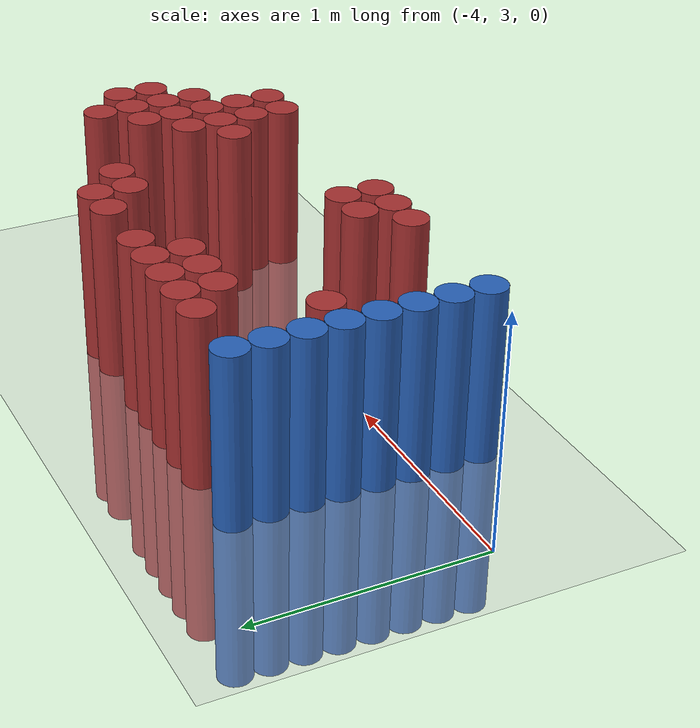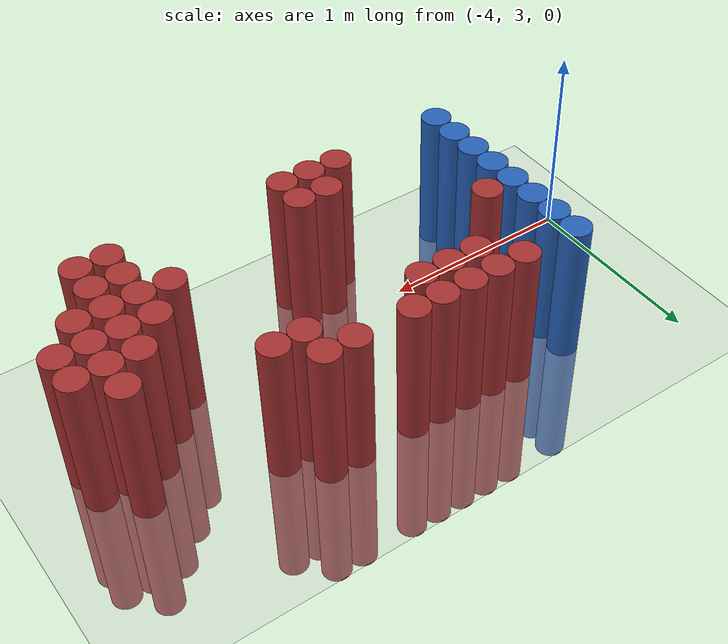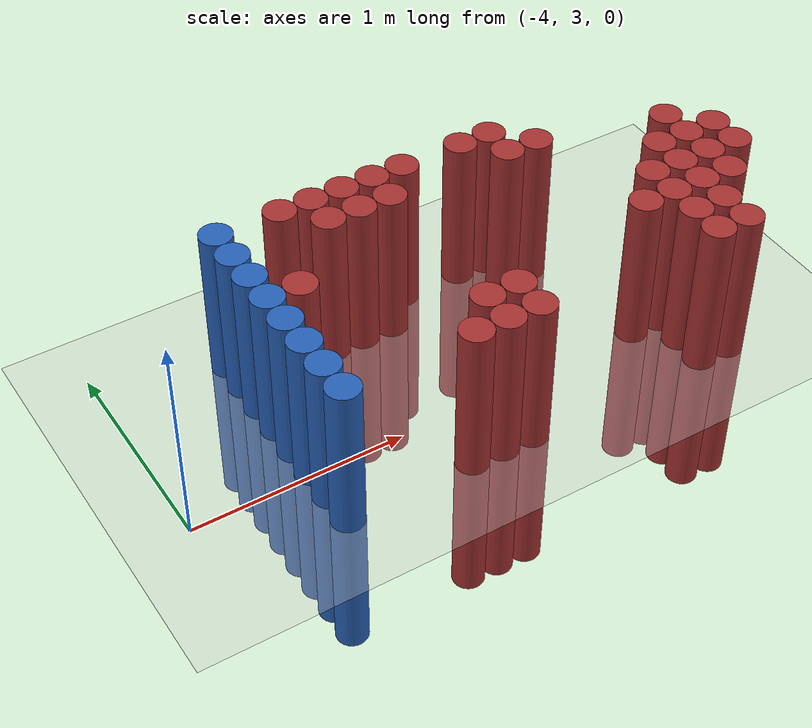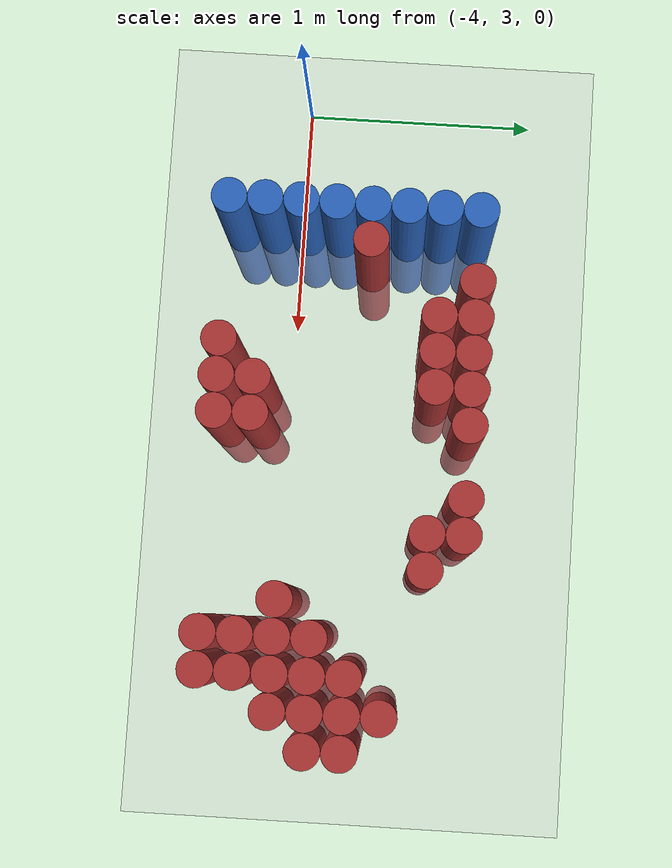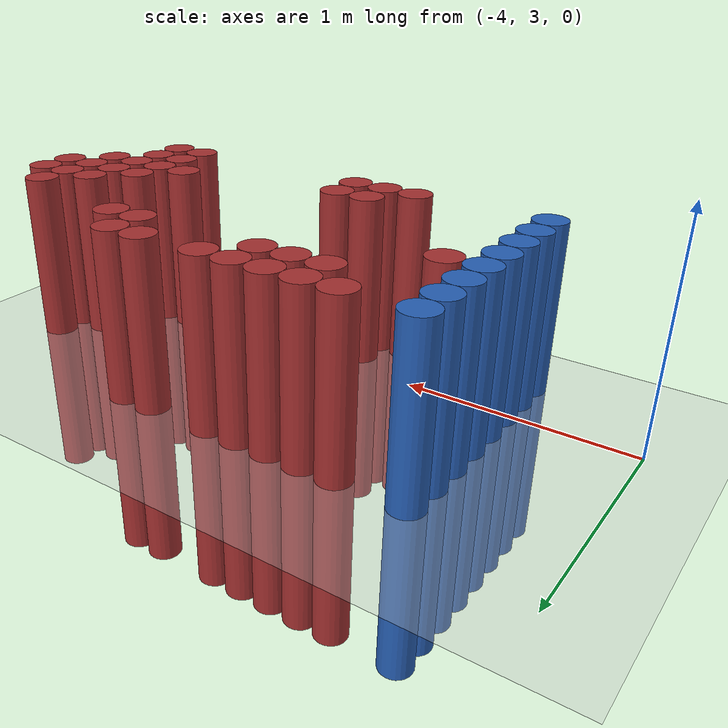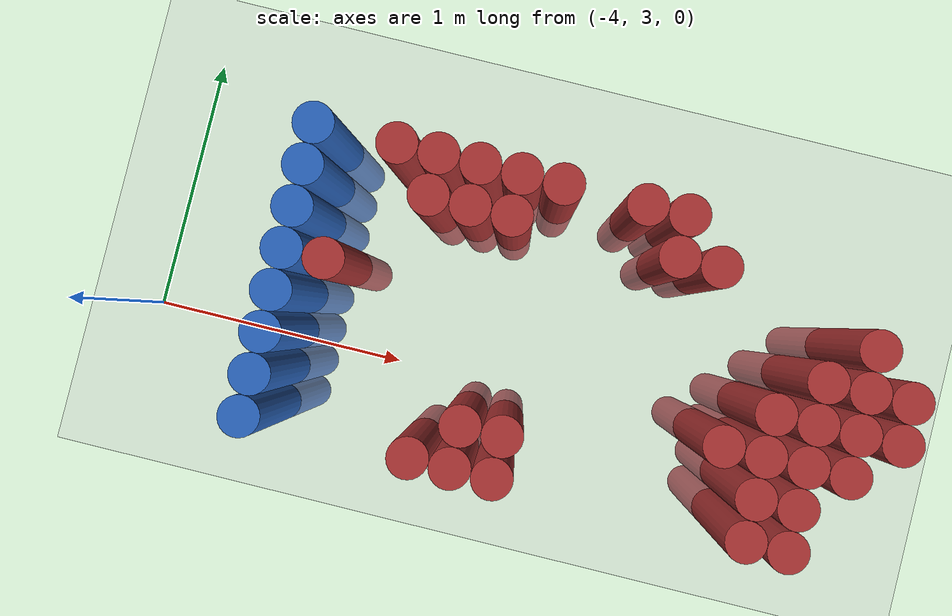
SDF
<sdf version="1.6">
 <world name="default">
  <model name="ground_plane">
   <static>1</static>
   <link name="link">
    <collision name="collision">
     <geometry><plane><normal>0 0 1</normal><size>100 100</size></plane></geometry>
     <surface><friction><ode><mu>100</mu><mu2>50</mu2></ode></friction></surface>
    </collision>
    <visual name="visual">
     <cast_shadows>0</cast_shadows>
     <geometry><plane><normal>0 0 1</normal><size>100 100</size></plane></geometry>
     <material>
      <script><uri>file://media/materials/scripts/gazebo.material</uri><name>Gazebo/Grey</name></script>
     </material>
    </visual>
   </link>
  </model>
  <model name="unit_cylinder_151">
   <static>1</static>
   <pose>-3.425000 2.725000 0.000000 0.000000 0.000000 0.000000</pose>
   <link name="link">
    <inertial>
     <mass>1</mass>
     <inertia><ixx>0.145833</ixx><ixy>0</ixy><ixz>0</ixz><iyy>0.145833</iyy><iyz>0</iyz><izz>0.125</izz></inertia>
    </inertial>
    <collision name="collision">
     <geometry><cylinder><radius>0.075000</radius><length>1.5</length></cylinder></geometry>
    </collision>
    <visual name="visual">
     <geometry><cylinder><radius>0.075000</radius><length>1.5</length></cylinder></geometry>
     <material>
      <ambient>0.152000 0.379000 0.720000 1</ambient>
      <diffuse>0.152000 0.379000 0.720000 1</diffuse>
     </material>
     <material>
      <script><name>Gazebo/Grey</name><uri>file://media/materials/scripts/gazebo.material</uri></script>
     </material>
    </visual>
   </link>
  </model>
  <model name="unit_cylinder_153">
   <static>1</static>
   <pose>-3.425000 2.875000 0.000000 0.000000 0.000000 0.000000</pose>
   <link name="link">
    <inertial>
     <mass>1</mass>
     <inertia><ixx>0.145833</ixx><ixy>0</ixy><ixz>0</ixz><iyy>0.145833</iyy><iyz>0</iyz><izz>0.125</izz></inertia>
    </inertial>
    <collision name="collision">
     <geometry><cylinder><radius>0.075000</radius><length>1.5</length></cylinder></geometry>
    </collision>
    <visual name="visual">
     <geometry><cylinder><radius>0.075000</radius><length>1.5</length></cylinder></geometry>
     <material>
      <ambient>0.152000 0.379000 0.720000 1</ambient>
      <diffuse>0.152000 0.379000 0.720000 1</diffuse>
     </material>
     <material>
      <script><name>Gazebo/Grey</name><uri>file://media/materials/scripts/gazebo.material</uri></script>
     </material>
    </visual>
   </link>
  </model>
  <model name="unit_cylinder_155">
   <static>1</static>
   <pose>-3.425000 3.025000 0.000000 0.000000 0.000000 0.000000</pose>
   <link name="link">
    <inertial>
     <mass>1</mass>
     <inertia><ixx>0.145833</ixx><ixy>0</ixy><ixz>0</ixz><iyy>0.145833</iyy><iyz>0</iyz><izz>0.125</izz></inertia>
    </inertial>
    <collision name="collision">
     <geometry><cylinder><radius>0.075000</radius><length>1.5</length></cylinder></geometry>
    </collision>
    <visual name="visual">
     <geometry><cylinder><radius>0.075000</radius><length>1.5</length></cylinder></geometry>
     <material>
      <ambient>0.152000 0.379000 0.720000 1</ambient>
      <diffuse>0.152000 0.379000 0.720000 1</diffuse>
     </material>
     <material>
      <script><name>Gazebo/Grey</name><uri>file://media/materials/scripts/gazebo.material</uri></script>
     </material>
    </visual>
   </link>
  </model>
  <model name="unit_cylinder_157">
   <static>1</static>
   <pose>-3.425000 3.175000 0.000000 0.000000 0.000000 0.000000</pose>
   <link name="link">
    <inertial>
     <mass>1</mass>
     <inertia><ixx>0.145833</ixx><ixy>0</ixy><ixz>0</ixz><iyy>0.145833</iyy><iyz>0</iyz><izz>0.125</izz></inertia>
    </inertial>
    <collision name="collision">
     <geometry><cylinder><radius>0.075000</radius><length>1.5</length></cylinder></geometry>
    </collision>
    <visual name="visual">
     <geometry><cylinder><radius>0.075000</radius><length>1.5</length></cylinder></geometry>
     <material>
      <ambient>0.152000 0.379000 0.720000 1</ambient>
      <diffuse>0.152000 0.379000 0.720000 1</diffuse>
     </material>
     <material>
      <script><name>Gazebo/Grey</name><uri>file://media/materials/scripts/gazebo.material</uri></script>
     </material>
    </visual>
   </link>
  </model>
  <model name="unit_cylinder_159">
   <static>1</static>
   <pose>-3.425000 3.325000 0.000000 0.000000 0.000000 0.000000</pose>
   <link name="link">
    <inertial>
     <mass>1</mass>
     <inertia><ixx>0.145833</ixx><ixy>0</ixy><ixz>0</ixz><iyy>0.145833</iyy><iyz>0</iyz><izz>0.125</izz></inertia>
    </inertial>
    <collision name="collision">
     <geometry><cylinder><radius>0.075000</radius><length>1.5</length></cylinder></geometry>
    </collision>
    <visual name="visual">
     <geometry><cylinder><radius>0.075000</radius><length>1.5</length></cylinder></geometry>
     <material>
      <ambient>0.152000 0.379000 0.720000 1</ambient>
      <diffuse>0.152000 0.379000 0.720000 1</diffuse>
     </material>
     <material>
      <script><name>Gazebo/Grey</name><uri>file://media/materials/scripts/gazebo.material</uri></script>
     </material>
    </visual>
   </link>
  </model>
  <model name="unit_cylinder_161">
   <static>1</static>
   <pose>-3.425000 3.475000 0.000000 0.000000 0.000000 0.000000</pose>
   <link name="link">
    <inertial>
     <mass>1</mass>
     <inertia><ixx>0.145833</ixx><ixy>0</ixy><ixz>0</ixz><iyy>0.145833</iyy><iyz>0</iyz><izz>0.125</izz></inertia>
    </inertial>
    <collision name="collision">
     <geometry><cylinder><radius>0.075000</radius><length>1.5</length></cylinder></geometry>
    </collision>
    <visual name="visual">
     <geometry><cylinder><radius>0.075000</radius><length>1.5</length></cylinder></geometry>
     <material>
      <ambient>0.152000 0.379000 0.720000 1</ambient>
      <diffuse>0.152000 0.379000 0.720000 1</diffuse>
     </material>
     <material>
      <script><name>Gazebo/Grey</name><uri>file://media/materials/scripts/gazebo.material</uri></script>
     </material>
    </visual>
   </link>
  </model>
  <model name="unit_cylinder_163">
   <static>1</static>
   <pose>-3.425000 3.625000 0.000000 0.000000 0.000000 0.000000</pose>
   <link name="link">
    <inertial>
     <mass>1</mass>
     <inertia><ixx>0.145833</ixx><ixy>0</ixy><ixz>0</ixz><iyy>0.145833</iyy><iyz>0</iyz><izz>0.125</izz></inertia>
    </inertial>
    <collision name="collision">
     <geometry><cylinder><radius>0.075000</radius><length>1.5</length></cylinder></geometry>
    </collision>
    <visual name="visual">
     <geometry><cylinder><radius>0.075000</radius><length>1.5</length></cylinder></geometry>
     <material>
      <ambient>0.152000 0.379000 0.720000 1</ambient>
      <diffuse>0.152000 0.379000 0.720000 1</diffuse>
     </material>
     <material>
      <script><name>Gazebo/Grey</name><uri>file://media/materials/scripts/gazebo.material</uri></script>
     </material>
    </visual>
   </link>
  </model>
  <model name="unit_cylinder_165">
   <static>1</static>
   <pose>-3.425000 3.775000 0.000000 0.000000 0.000000 0.000000</pose>
   <link name="link">
    <inertial>
     <mass>1</mass>
     <inertia><ixx>0.145833</ixx><ixy>0</ixy><ixz>0</ixz><iyy>0.145833</iyy><iyz>0</iyz><izz>0.125</izz></inertia>
    </inertial>
    <collision name="collision">
     <geometry><cylinder><radius>0.075000</radius><length>1.5</length></cylinder></geometry>
    </collision>
    <visual name="visual">
     <geometry><cylinder><radius>0.075000</radius><length>1.5</length></cylinder></geometry>
     <material>
      <ambient>0.152000 0.379000 0.720000 1</ambient>
      <diffuse>0.152000 0.379000 0.720000 1</diffuse>
     </material>
     <material>
      <script><name>Gazebo/Grey</name><uri>file://media/materials/scripts/gazebo.material</uri></script>
     </material>
    </visual>
   </link>
  </model>
  <model name="unit_cylinder_239">
   <static>1</static>
   <pose>-3.425000 2.725000 0.000000 0.000000 0.000000 0.000000</pose>
   <link name="link">
    <inertial>
     <mass>1</mass>
     <inertia><ixx>0.145833</ixx><ixy>0</ixy><ixz>0</ixz><iyy>0.145833</iyy><iyz>0</iyz><izz>0.125</izz></inertia>
    </inertial>
    <collision name="collision">
     <geometry><cylinder><radius>0.075000</radius><length>1.5</length></cylinder></geometry>
    </collision>
    <visual name="visual">
     <geometry><cylinder><radius>0.075000</radius><length>1.5</length></cylinder></geometry>
     <material>
      <ambient>0.152000 0.379000 0.720000 1</ambient>
      <diffuse>0.152000 0.379000 0.720000 1</diffuse>
     </material>
     <material>
      <script><name>Gazebo/Grey</name><uri>file://media/materials/scripts/gazebo.material</uri></script>
     </material>
    </visual>
   </link>
  </model>
  <model name="unit_cylinder_240">
   <static>1</static>
   <pose>-3.425000 2.875000 0.000000 0.000000 0.000000 0.000000</pose>
   <link name="link">
    <inertial>
     <mass>1</mass>
     <inertia><ixx>0.145833</ixx><ixy>0</ixy><ixz>0</ixz><iyy>0.145833</iyy><iyz>0</iyz><izz>0.125</izz></inertia>
    </inertial>
    <collision name="collision">
     <geometry><cylinder><radius>0.075000</radius><length>1.5</length></cylinder></geometry>
    </collision>
    <visual name="visual">
     <geometry><cylinder><radius>0.075000</radius><length>1.5</length></cylinder></geometry>
     <material>
      <ambient>0.152000 0.379000 0.720000 1</ambient>
      <diffuse>0.152000 0.379000 0.720000 1</diffuse>
     </material>
     <material>
      <script><name>Gazebo/Grey</name><uri>file://media/materials/scripts/gazebo.material</uri></script>
     </material>
    </visual>
   </link>
  </model>
  <model name="unit_cylinder_241">
   <static>1</static>
   <pose>-3.425000 3.025000 0.000000 0.000000 0.000000 0.000000</pose>
   <link name="link">
    <inertial>
     <mass>1</mass>
     <inertia><ixx>0.145833</ixx><ixy>0</ixy><ixz>0</ixz><iyy>0.145833</iyy><iyz>0</iyz><izz>0.125</izz></inertia>
    </inertial>
    <collision name="collision">
     <geometry><cylinder><radius>0.075000</radius><length>1.5</length></cylinder></geometry>
    </collision>
    <visual name="visual">
     <geometry><cylinder><radius>0.075000</radius><length>1.5</length></cylinder></geometry>
     <material>
      <ambient>0.152000 0.379000 0.720000 1</ambient>
      <diffuse>0.152000 0.379000 0.720000 1</diffuse>
     </material>
     <material>
      <script><name>Gazebo/Grey</name><uri>file://media/materials/scripts/gazebo.material</uri></script>
     </material>
    </visual>
   </link>
  </model>
  <model name="unit_cylinder_242">
   <static>1</static>
   <pose>-3.425000 3.175000 0.000000 0.000000 0.000000 0.000000</pose>
   <link name="link">
    <inertial>
     <mass>1</mass>
     <inertia><ixx>0.145833</ixx><ixy>0</ixy><ixz>0</ixz><iyy>0.145833</iyy><iyz>0</iyz><izz>0.125</izz></inertia>
    </inertial>
    <collision name="collision">
     <geometry><cylinder><radius>0.075000</radius><length>1.5</length></cylinder></geometry>
    </collision>
    <visual name="visual">
     <geometry><cylinder><radius>0.075000</radius><length>1.5</length></cylinder></geometry>
     <material>
      <ambient>0.152000 0.379000 0.720000 1</ambient>
      <diffuse>0.152000 0.379000 0.720000 1</diffuse>
     </material>
     <material>
      <script><name>Gazebo/Grey</name><uri>file://media/materials/scripts/gazebo.material</uri></script>
     </material>
    </visual>
   </link>
  </model>
  <model name="unit_cylinder_243">
   <static>1</static>
   <pose>-3.425000 3.325000 0.000000 0.000000 0.000000 0.000000</pose>
   <link name="link">
    <inertial>
     <mass>1</mass>
     <inertia><ixx>0.145833</ixx><ixy>0</ixy><ixz>0</ixz><iyy>0.145833</iyy><iyz>0</iyz><izz>0.125</izz></inertia>
    </inertial>
    <collision name="collision">
     <geometry><cylinder><radius>0.075000</radius><length>1.5</length></cylinder></geometry>
    </collision>
    <visual name="visual">
     <geometry><cylinder><radius>0.075000</radius><length>1.5</length></cylinder></geometry>
     <material>
      <ambient>0.152000 0.379000 0.720000 1</ambient>
      <diffuse>0.152000 0.379000 0.720000 1</diffuse>
     </material>
     <material>
      <script><name>Gazebo/Grey</name><uri>file://media/materials/scripts/gazebo.material</uri></script>
     </material>
    </visual>
   </link>
  </model>
  <model name="unit_cylinder_244">
   <static>1</static>
   <pose>-3.425000 3.475000 0.000000 0.000000 0.000000 0.000000</pose>
   <link name="link">
    <inertial>
     <mass>1</mass>
     <inertia><ixx>0.145833</ixx><ixy>0</ixy><ixz>0</ixz><iyy>0.145833</iyy><iyz>0</iyz><izz>0.125</izz></inertia>
    </inertial>
    <collision name="collision">
     <geometry><cylinder><radius>0.075000</radius><length>1.5</length></cylinder></geometry>
    </collision>
    <visual name="visual">
     <geometry><cylinder><radius>0.075000</radius><length>1.5</length></cylinder></geometry>
     <material>
      <ambient>0.152000 0.379000 0.720000 1</ambient>
      <diffuse>0.152000 0.379000 0.720000 1</diffuse>
     </material>
     <material>
      <script><name>Gazebo/Grey</name><uri>file://media/materials/scripts/gazebo.material</uri></script>
     </material>
    </visual>
   </link>
  </model>
  <model name="unit_cylinder_245">
   <static>1</static>
   <pose>-3.425000 3.625000 0.000000 0.000000 0.000000 0.000000</pose>
   <link name="link">
    <inertial>
     <mass>1</mass>
     <inertia><ixx>0.145833</ixx><ixy>0</ixy><ixz>0</ixz><iyy>0.145833</iyy><iyz>0</iyz><izz>0.125</izz></inertia>
    </inertial>
    <collision name="collision">
     <geometry><cylinder><radius>0.075000</radius><length>1.5</length></cylinder></geometry>
    </collision>
    <visual name="visual">
     <geometry><cylinder><radius>0.075000</radius><length>1.5</length></cylinder></geometry>
     <material>
      <ambient>0.152000 0.379000 0.720000 1</ambient>
      <diffuse>0.152000 0.379000 0.720000 1</diffuse>
     </material>
     <material>
      <script><name>Gazebo/Grey</name><uri>file://media/materials/scripts/gazebo.material</uri></script>
     </material>
    </visual>
   </link>
  </model>
  <model name="unit_cylinder_246">
   <static>1</static>
   <pose>-3.425000 3.775000 0.000000 0.000000 0.000000 0.000000</pose>
   <link name="link">
    <inertial>
     <mass>1</mass>
     <inertia><ixx>0.145833</ixx><ixy>0</ixy><ixz>0</ixz><iyy>0.145833</iyy><iyz>0</iyz><izz>0.125</izz></inertia>
    </inertial>
    <collision name="collision">
     <geometry><cylinder><radius>0.075000</radius><length>1.5</length></cylinder></geometry>
    </collision>
    <visual name="visual">
     <geometry><cylinder><radius>0.075000</radius><length>1.5</length></cylinder></geometry>
     <material>
      <ambient>0.152000 0.379000 0.720000 1</ambient>
      <diffuse>0.152000 0.379000 0.720000 1</diffuse>
     </material>
     <material>
      <script><name>Gazebo/Grey</name><uri>file://media/materials/scripts/gazebo.material</uri></script>
     </material>
    </visual>
   </link>
  </model>
  <model name="unit_cylinder_275">
   <static>1</static>
   <pose>-3.275000 3.325000 0.000000 0.000000 0.000000 0.000000</pose>
   <link name="link">
    <inertial>
     <mass>1</mass>
     <inertia><ixx>0.145833</ixx><ixy>0</ixy><ixz>0</ixz><iyy>0.145833</iyy><iyz>0</iyz><izz>0.125</izz></inertia>
    </inertial>
    <collision name="collision">
     <geometry><cylinder><radius>0.075000</radius><length>1.5</length></cylinder></geometry>
    </collision>
    <visual name="visual">
     <geometry><cylinder><radius>0.075000</radius><length>1.5</length></cylinder></geometry>
     <material>
      <ambient>0.648000 0.192000 0.192000 1</ambient>
      <diffuse>0.648000 0.192000 0.192000 1</diffuse>
     </material>
     <material>
      <script><name>Gazebo/Grey</name><uri>file://media/materials/scripts/gazebo.material</uri></script>
     </material>
    </visual>
   </link>
  </model>
  <model name="unit_cylinder_283">
   <static>1</static>
   <pose>-3.125000 3.775000 0.000000 0.000000 0.000000 0.000000</pose>
   <link name="link">
    <inertial>
     <mass>1</mass>
     <inertia><ixx>0.145833</ixx><ixy>0</ixy><ixz>0</ixz><iyy>0.145833</iyy><iyz>0</iyz><izz>0.125</izz></inertia>
    </inertial>
    <collision name="collision">
     <geometry><cylinder><radius>0.075000</radius><length>1.5</length></cylinder></geometry>
    </collision>
    <visual name="visual">
     <geometry><cylinder><radius>0.075000</radius><length>1.5</length></cylinder></geometry>
     <material>
      <ambient>0.648000 0.192000 0.192000 1</ambient>
      <diffuse>0.648000 0.192000 0.192000 1</diffuse>
     </material>
     <material>
      <script><name>Gazebo/Grey</name><uri>file://media/materials/scripts/gazebo.material</uri></script>
     </material>
    </visual>
   </link>
  </model>
  <model name="unit_cylinder_292">
   <static>1</static>
   <pose>-2.975000 3.625000 0.000000 0.000000 0.000000 0.000000</pose>
   <link name="link">
    <inertial>
     <mass>1</mass>
     <inertia><ixx>0.145833</ixx><ixy>0</ixy><ixz>0</ixz><iyy>0.145833</iyy><iyz>0</iyz><izz>0.125</izz></inertia>
    </inertial>
    <collision name="collision">
     <geometry><cylinder><radius>0.075000</radius><length>1.5</length></cylinder></geometry>
    </collision>
    <visual name="visual">
     <geometry><cylinder><radius>0.075000</radius><length>1.5</length></cylinder></geometry>
     <material>
      <ambient>0.648000 0.192000 0.192000 1</ambient>
      <diffuse>0.648000 0.192000 0.192000 1</diffuse>
     </material>
     <material>
      <script><name>Gazebo/Grey</name><uri>file://media/materials/scripts/gazebo.material</uri></script>
     </material>
    </visual>
   </link>
  </model>
  <model name="unit_cylinder_293">
   <static>1</static>
   <pose>-2.975000 3.775000 0.000000 0.000000 0.000000 0.000000</pose>
   <link name="link">
    <inertial>
     <mass>1</mass>
     <inertia><ixx>0.145833</ixx><ixy>0</ixy><ixz>0</ixz><iyy>0.145833</iyy><iyz>0</iyz><izz>0.125</izz></inertia>
    </inertial>
    <collision name="collision">
     <geometry><cylinder><radius>0.075000</radius><length>1.5</length></cylinder></geometry>
    </collision>
    <visual name="visual">
     <geometry><cylinder><radius>0.075000</radius><length>1.5</length></cylinder></geometry>
     <material>
      <ambient>0.648000 0.192000 0.192000 1</ambient>
      <diffuse>0.648000 0.192000 0.192000 1</diffuse>
     </material>
     <material>
      <script><name>Gazebo/Grey</name><uri>file://media/materials/scripts/gazebo.material</uri></script>
     </material>
    </visual>
   </link>
  </model>
  <model name="unit_cylinder_305">
   <static>1</static>
   <pose>-2.825000 2.725000 0.000000 0.000000 0.000000 0.000000</pose>
   <link name="link">
    <inertial>
     <mass>1</mass>
     <inertia><ixx>0.145833</ixx><ixy>0</ixy><ixz>0</ixz><iyy>0.145833</iyy><iyz>0</iyz><izz>0.125</izz></inertia>
    </inertial>
    <collision name="collision">
     <geometry><cylinder><radius>0.075000</radius><length>1.5</length></cylinder></geometry>
    </collision>
    <visual name="visual">
     <geometry><cylinder><radius>0.075000</radius><length>1.5</length></cylinder></geometry>
     <material>
      <ambient>0.648000 0.192000 0.192000 1</ambient>
      <diffuse>0.648000 0.192000 0.192000 1</diffuse>
     </material>
     <material>
      <script><name>Gazebo/Grey</name><uri>file://media/materials/scripts/gazebo.material</uri></script>
     </material>
    </visual>
   </link>
  </model>
  <model name="unit_cylinder_306">
   <static>1</static>
   <pose>-2.825000 3.625000 0.000000 0.000000 0.000000 0.000000</pose>
   <link name="link">
    <inertial>
     <mass>1</mass>
     <inertia><ixx>0.145833</ixx><ixy>0</ixy><ixz>0</ixz><iyy>0.145833</iyy><iyz>0</iyz><izz>0.125</izz></inertia>
    </inertial>
    <collision name="collision">
     <geometry><cylinder><radius>0.075000</radius><length>1.5</length></cylinder></geometry>
    </collision>
    <visual name="visual">
     <geometry><cylinder><radius>0.075000</radius><length>1.5</length></cylinder></geometry>
     <material>
      <ambient>0.648000 0.192000 0.192000 1</ambient>
      <diffuse>0.648000 0.192000 0.192000 1</diffuse>
     </material>
     <material>
      <script><name>Gazebo/Grey</name><uri>file://media/materials/scripts/gazebo.material</uri></script>
     </material>
    </visual>
   </link>
  </model>
  <model name="unit_cylinder_307">
   <static>1</static>
   <pose>-2.825000 3.775000 0.000000 0.000000 0.000000 0.000000</pose>
   <link name="link">
    <inertial>
     <mass>1</mass>
     <inertia><ixx>0.145833</ixx><ixy>0</ixy><ixz>0</ixz><iyy>0.145833</iyy><iyz>0</iyz><izz>0.125</izz></inertia>
    </inertial>
    <collision name="collision">
     <geometry><cylinder><radius>0.075000</radius><length>1.5</length></cylinder></geometry>
    </collision>
    <visual name="visual">
     <geometry><cylinder><radius>0.075000</radius><length>1.5</length></cylinder></geometry>
     <material>
      <ambient>0.648000 0.192000 0.192000 1</ambient>
      <diffuse>0.648000 0.192000 0.192000 1</diffuse>
     </material>
     <material>
      <script><name>Gazebo/Grey</name><uri>file://media/materials/scripts/gazebo.material</uri></script>
     </material>
    </visual>
   </link>
  </model>
  <model name="unit_cylinder_318">
   <static>1</static>
   <pose>-2.675000 2.725000 0.000000 0.000000 0.000000 0.000000</pose>
   <link name="link">
    <inertial>
     <mass>1</mass>
     <inertia><ixx>0.145833</ixx><ixy>0</ixy><ixz>0</ixz><iyy>0.145833</iyy><iyz>0</iyz><izz>0.125</izz></inertia>
    </inertial>
    <collision name="collision">
     <geometry><cylinder><radius>0.075000</radius><length>1.5</length></cylinder></geometry>
    </collision>
    <visual name="visual">
     <geometry><cylinder><radius>0.075000</radius><length>1.5</length></cylinder></geometry>
     <material>
      <ambient>0.648000 0.192000 0.192000 1</ambient>
      <diffuse>0.648000 0.192000 0.192000 1</diffuse>
     </material>
     <material>
      <script><name>Gazebo/Grey</name><uri>file://media/materials/scripts/gazebo.material</uri></script>
     </material>
    </visual>
   </link>
  </model>
  <model name="unit_cylinder_319">
   <static>1</static>
   <pose>-2.675000 2.875000 0.000000 0.000000 0.000000 0.000000</pose>
   <link name="link">
    <inertial>
     <mass>1</mass>
     <inertia><ixx>0.145833</ixx><ixy>0</ixy><ixz>0</ixz><iyy>0.145833</iyy><iyz>0</iyz><izz>0.125</izz></inertia>
    </inertial>
    <collision name="collision">
     <geometry><cylinder><radius>0.075000</radius><length>1.5</length></cylinder></geometry>
    </collision>
    <visual name="visual">
     <geometry><cylinder><radius>0.075000</radius><length>1.5</length></cylinder></geometry>
     <material>
      <ambient>0.648000 0.192000 0.192000 1</ambient>
      <diffuse>0.648000 0.192000 0.192000 1</diffuse>
     </material>
     <material>
      <script><name>Gazebo/Grey</name><uri>file://media/materials/scripts/gazebo.material</uri></script>
     </material>
    </visual>
   </link>
  </model>
  <model name="unit_cylinder_320">
   <static>1</static>
   <pose>-2.675000 3.625000 0.000000 0.000000 0.000000 0.000000</pose>
   <link name="link">
    <inertial>
     <mass>1</mass>
     <inertia><ixx>0.145833</ixx><ixy>0</ixy><ixz>0</ixz><iyy>0.145833</iyy><iyz>0</iyz><izz>0.125</izz></inertia>
    </inertial>
    <collision name="collision">
     <geometry><cylinder><radius>0.075000</radius><length>1.5</length></cylinder></geometry>
    </collision>
    <visual name="visual">
     <geometry><cylinder><radius>0.075000</radius><length>1.5</length></cylinder></geometry>
     <material>
      <ambient>0.648000 0.192000 0.192000 1</ambient>
      <diffuse>0.648000 0.192000 0.192000 1</diffuse>
     </material>
     <material>
      <script><name>Gazebo/Grey</name><uri>file://media/materials/scripts/gazebo.material</uri></script>
     </material>
    </visual>
   </link>
  </model>
  <model name="unit_cylinder_321">
   <static>1</static>
   <pose>-2.675000 3.775000 0.000000 0.000000 0.000000 0.000000</pose>
   <link name="link">
    <inertial>
     <mass>1</mass>
     <inertia><ixx>0.145833</ixx><ixy>0</ixy><ixz>0</ixz><iyy>0.145833</iyy><iyz>0</iyz><izz>0.125</izz></inertia>
    </inertial>
    <collision name="collision">
     <geometry><cylinder><radius>0.075000</radius><length>1.5</length></cylinder></geometry>
    </collision>
    <visual name="visual">
     <geometry><cylinder><radius>0.075000</radius><length>1.5</length></cylinder></geometry>
     <material>
      <ambient>0.648000 0.192000 0.192000 1</ambient>
      <diffuse>0.648000 0.192000 0.192000 1</diffuse>
     </material>
     <material>
      <script><name>Gazebo/Grey</name><uri>file://media/materials/scripts/gazebo.material</uri></script>
     </material>
    </visual>
   </link>
  </model>
  <model name="unit_cylinder_328">
   <static>1</static>
   <pose>-2.525000 2.725000 0.000000 0.000000 0.000000 0.000000</pose>
   <link name="link">
    <inertial>
     <mass>1</mass>
     <inertia><ixx>0.145833</ixx><ixy>0</ixy><ixz>0</ixz><iyy>0.145833</iyy><iyz>0</iyz><izz>0.125</izz></inertia>
    </inertial>
    <collision name="collision">
     <geometry><cylinder><radius>0.075000</radius><length>1.5</length></cylinder></geometry>
    </collision>
    <visual name="visual">
     <geometry><cylinder><radius>0.075000</radius><length>1.5</length></cylinder></geometry>
     <material>
      <ambient>0.648000 0.192000 0.192000 1</ambient>
      <diffuse>0.648000 0.192000 0.192000 1</diffuse>
     </material>
     <material>
      <script><name>Gazebo/Grey</name><uri>file://media/materials/scripts/gazebo.material</uri></script>
     </material>
    </visual>
   </link>
  </model>
  <model name="unit_cylinder_329">
   <static>1</static>
   <pose>-2.525000 2.875000 0.000000 0.000000 0.000000 0.000000</pose>
   <link name="link">
    <inertial>
     <mass>1</mass>
     <inertia><ixx>0.145833</ixx><ixy>0</ixy><ixz>0</ixz><iyy>0.145833</iyy><iyz>0</iyz><izz>0.125</izz></inertia>
    </inertial>
    <collision name="collision">
     <geometry><cylinder><radius>0.075000</radius><length>1.5</length></cylinder></geometry>
    </collision>
    <visual name="visual">
     <geometry><cylinder><radius>0.075000</radius><length>1.5</length></cylinder></geometry>
     <material>
      <ambient>0.648000 0.192000 0.192000 1</ambient>
      <diffuse>0.648000 0.192000 0.192000 1</diffuse>
     </material>
     <material>
      <script><name>Gazebo/Grey</name><uri>file://media/materials/scripts/gazebo.material</uri></script>
     </material>
    </visual>
   </link>
  </model>
  <model name="unit_cylinder_330">
   <static>1</static>
   <pose>-2.525000 3.775000 0.000000 0.000000 0.000000 0.000000</pose>
   <link name="link">
    <inertial>
     <mass>1</mass>
     <inertia><ixx>0.145833</ixx><ixy>0</ixy><ixz>0</ixz><iyy>0.145833</iyy><iyz>0</iyz><izz>0.125</izz></inertia>
    </inertial>
    <collision name="collision">
     <geometry><cylinder><radius>0.075000</radius><length>1.5</length></cylinder></geometry>
    </collision>
    <visual name="visual">
     <geometry><cylinder><radius>0.075000</radius><length>1.5</length></cylinder></geometry>
     <material>
      <ambient>0.648000 0.192000 0.192000 1</ambient>
      <diffuse>0.648000 0.192000 0.192000 1</diffuse>
     </material>
     <material>
      <script><name>Gazebo/Grey</name><uri>file://media/materials/scripts/gazebo.material</uri></script>
     </material>
    </visual>
   </link>
  </model>
  <model name="unit_cylinder_343">
   <static>1</static>
   <pose>-2.225000 3.775000 0.000000 0.000000 0.000000 0.000000</pose>
   <link name="link">
    <inertial>
     <mass>1</mass>
     <inertia><ixx>0.145833</ixx><ixy>0</ixy><ixz>0</ixz><iyy>0.145833</iyy><iyz>0</iyz><izz>0.125</izz></inertia>
    </inertial>
    <collision name="collision">
     <geometry><cylinder><radius>0.075000</radius><length>1.5</length></cylinder></geometry>
    </collision>
    <visual name="visual">
     <geometry><cylinder><radius>0.075000</radius><length>1.5</length></cylinder></geometry>
     <material>
      <ambient>0.648000 0.192000 0.192000 1</ambient>
      <diffuse>0.648000 0.192000 0.192000 1</diffuse>
     </material>
     <material>
      <script><name>Gazebo/Grey</name><uri>file://media/materials/scripts/gazebo.material</uri></script>
     </material>
    </visual>
   </link>
  </model>
  <model name="unit_cylinder_348">
   <static>1</static>
   <pose>-2.075000 3.625000 0.000000 0.000000 0.000000 0.000000</pose>
   <link name="link">
    <inertial>
     <mass>1</mass>
     <inertia><ixx>0.145833</ixx><ixy>0</ixy><ixz>0</ixz><iyy>0.145833</iyy><iyz>0</iyz><izz>0.125</izz></inertia>
    </inertial>
    <collision name="collision">
     <geometry><cylinder><radius>0.075000</radius><length>1.5</length></cylinder></geometry>
    </collision>
    <visual name="visual">
     <geometry><cylinder><radius>0.075000</radius><length>1.5</length></cylinder></geometry>
     <material>
      <ambient>0.648000 0.192000 0.192000 1</ambient>
      <diffuse>0.648000 0.192000 0.192000 1</diffuse>
     </material>
     <material>
      <script><name>Gazebo/Grey</name><uri>file://media/materials/scripts/gazebo.material</uri></script>
     </material>
    </visual>
   </link>
  </model>
  <model name="unit_cylinder_349">
   <static>1</static>
   <pose>-2.075000 3.775000 0.000000 0.000000 0.000000 0.000000</pose>
   <link name="link">
    <inertial>
     <mass>1</mass>
     <inertia><ixx>0.145833</ixx><ixy>0</ixy><ixz>0</ixz><iyy>0.145833</iyy><iyz>0</iyz><izz>0.125</izz></inertia>
    </inertial>
    <collision name="collision">
     <geometry><cylinder><radius>0.075000</radius><length>1.5</length></cylinder></geometry>
    </collision>
    <visual name="visual">
     <geometry><cylinder><radius>0.075000</radius><length>1.5</length></cylinder></geometry>
     <material>
      <ambient>0.648000 0.192000 0.192000 1</ambient>
      <diffuse>0.648000 0.192000 0.192000 1</diffuse>
     </material>
     <material>
      <script><name>Gazebo/Grey</name><uri>file://media/materials/scripts/gazebo.material</uri></script>
     </material>
    </visual>
   </link>
  </model>
  <model name="unit_cylinder_355">
   <static>1</static>
   <pose>-1.925000 3.625000 0.000000 0.000000 0.000000 0.000000</pose>
   <link name="link">
    <inertial>
     <mass>1</mass>
     <inertia><ixx>0.145833</ixx><ixy>0</ixy><ixz>0</ixz><iyy>0.145833</iyy><iyz>0</iyz><izz>0.125</izz></inertia>
    </inertial>
    <collision name="collision">
     <geometry><cylinder><radius>0.075000</radius><length>1.5</length></cylinder></geometry>
    </collision>
    <visual name="visual">
     <geometry><cylinder><radius>0.075000</radius><length>1.5</length></cylinder></geometry>
     <material>
      <ambient>0.648000 0.192000 0.192000 1</ambient>
      <diffuse>0.648000 0.192000 0.192000 1</diffuse>
     </material>
     <material>
      <script><name>Gazebo/Grey</name><uri>file://media/materials/scripts/gazebo.material</uri></script>
     </material>
    </visual>
   </link>
  </model>
  <model name="unit_cylinder_358">
   <static>1</static>
   <pose>-1.775000 3.025000 0.000000 0.000000 0.000000 0.000000</pose>
   <link name="link">
    <inertial>
     <mass>1</mass>
     <inertia><ixx>0.145833</ixx><ixy>0</ixy><ixz>0</ixz><iyy>0.145833</iyy><iyz>0</iyz><izz>0.125</izz></inertia>
    </inertial>
    <collision name="collision">
     <geometry><cylinder><radius>0.075000</radius><length>1.5</length></cylinder></geometry>
    </collision>
    <visual name="visual">
     <geometry><cylinder><radius>0.075000</radius><length>1.5</length></cylinder></geometry>
     <material>
      <ambient>0.648000 0.192000 0.192000 1</ambient>
      <diffuse>0.648000 0.192000 0.192000 1</diffuse>
     </material>
     <material>
      <script><name>Gazebo/Grey</name><uri>file://media/materials/scripts/gazebo.material</uri></script>
     </material>
    </visual>
   </link>
  </model>
  <model name="unit_cylinder_359">
   <static>1</static>
   <pose>-1.625000 2.725000 0.000000 0.000000 0.000000 0.000000</pose>
   <link name="link">
    <inertial>
     <mass>1</mass>
     <inertia><ixx>0.145833</ixx><ixy>0</ixy><ixz>0</ixz><iyy>0.145833</iyy><iyz>0</iyz><izz>0.125</izz></inertia>
    </inertial>
    <collision name="collision">
     <geometry><cylinder><radius>0.075000</radius><length>1.5</length></cylinder></geometry>
    </collision>
    <visual name="visual">
     <geometry><cylinder><radius>0.075000</radius><length>1.5</length></cylinder></geometry>
     <material>
      <ambient>0.648000 0.192000 0.192000 1</ambient>
      <diffuse>0.648000 0.192000 0.192000 1</diffuse>
     </material>
     <material>
      <script><name>Gazebo/Grey</name><uri>file://media/materials/scripts/gazebo.material</uri></script>
     </material>
    </visual>
   </link>
  </model>
  <model name="unit_cylinder_360">
   <static>1</static>
   <pose>-1.625000 2.875000 0.000000 0.000000 0.000000 0.000000</pose>
   <link name="link">
    <inertial>
     <mass>1</mass>
     <inertia><ixx>0.145833</ixx><ixy>0</ixy><ixz>0</ixz><iyy>0.145833</iyy><iyz>0</iyz><izz>0.125</izz></inertia>
    </inertial>
    <collision name="collision">
     <geometry><cylinder><radius>0.075000</radius><length>1.5</length></cylinder></geometry>
    </collision>
    <visual name="visual">
     <geometry><cylinder><radius>0.075000</radius><length>1.5</length></cylinder></geometry>
     <material>
      <ambient>0.648000 0.192000 0.192000 1</ambient>
      <diffuse>0.648000 0.192000 0.192000 1</diffuse>
     </material>
     <material>
      <script><name>Gazebo/Grey</name><uri>file://media/materials/scripts/gazebo.material</uri></script>
     </material>
    </visual>
   </link>
  </model>
  <model name="unit_cylinder_361">
   <static>1</static>
   <pose>-1.625000 3.025000 0.000000 0.000000 0.000000 0.000000</pose>
   <link name="link">
    <inertial>
     <mass>1</mass>
     <inertia><ixx>0.145833</ixx><ixy>0</ixy><ixz>0</ixz><iyy>0.145833</iyy><iyz>0</iyz><izz>0.125</izz></inertia>
    </inertial>
    <collision name="collision">
     <geometry><cylinder><radius>0.075000</radius><length>1.5</length></cylinder></geometry>
    </collision>
    <visual name="visual">
     <geometry><cylinder><radius>0.075000</radius><length>1.5</length></cylinder></geometry>
     <material>
      <ambient>0.648000 0.192000 0.192000 1</ambient>
      <diffuse>0.648000 0.192000 0.192000 1</diffuse>
     </material>
     <material>
      <script><name>Gazebo/Grey</name><uri>file://media/materials/scripts/gazebo.material</uri></script>
     </material>
    </visual>
   </link>
  </model>
  <model name="unit_cylinder_362">
   <static>1</static>
   <pose>-1.625000 3.175000 0.000000 0.000000 0.000000 0.000000</pose>
   <link name="link">
    <inertial>
     <mass>1</mass>
     <inertia><ixx>0.145833</ixx><ixy>0</ixy><ixz>0</ixz><iyy>0.145833</iyy><iyz>0</iyz><izz>0.125</izz></inertia>
    </inertial>
    <collision name="collision">
     <geometry><cylinder><radius>0.075000</radius><length>1.5</length></cylinder></geometry>
    </collision>
    <visual name="visual">
     <geometry><cylinder><radius>0.075000</radius><length>1.5</length></cylinder></geometry>
     <material>
      <ambient>0.648000 0.192000 0.192000 1</ambient>
      <diffuse>0.648000 0.192000 0.192000 1</diffuse>
     </material>
     <material>
      <script><name>Gazebo/Grey</name><uri>file://media/materials/scripts/gazebo.material</uri></script>
     </material>
    </visual>
   </link>
  </model>
  <model name="unit_cylinder_363">
   <static>1</static>
   <pose>-1.475000 2.725000 0.000000 0.000000 0.000000 0.000000</pose>
   <link name="link">
    <inertial>
     <mass>1</mass>
     <inertia><ixx>0.145833</ixx><ixy>0</ixy><ixz>0</ixz><iyy>0.145833</iyy><iyz>0</iyz><izz>0.125</izz></inertia>
    </inertial>
    <collision name="collision">
     <geometry><cylinder><radius>0.075000</radius><length>1.5</length></cylinder></geometry>
    </collision>
    <visual name="visual">
     <geometry><cylinder><radius>0.075000</radius><length>1.5</length></cylinder></geometry>
     <material>
      <ambient>0.648000 0.192000 0.192000 1</ambient>
      <diffuse>0.648000 0.192000 0.192000 1</diffuse>
     </material>
     <material>
      <script><name>Gazebo/Grey</name><uri>file://media/materials/scripts/gazebo.material</uri></script>
     </material>
    </visual>
   </link>
  </model>
  <model name="unit_cylinder_364">
   <static>1</static>
   <pose>-1.475000 2.875000 0.000000 0.000000 0.000000 0.000000</pose>
   <link name="link">
    <inertial>
     <mass>1</mass>
     <inertia><ixx>0.145833</ixx><ixy>0</ixy><ixz>0</ixz><iyy>0.145833</iyy><iyz>0</iyz><izz>0.125</izz></inertia>
    </inertial>
    <collision name="collision">
     <geometry><cylinder><radius>0.075000</radius><length>1.5</length></cylinder></geometry>
    </collision>
    <visual name="visual">
     <geometry><cylinder><radius>0.075000</radius><length>1.5</length></cylinder></geometry>
     <material>
      <ambient>0.648000 0.192000 0.192000 1</ambient>
      <diffuse>0.648000 0.192000 0.192000 1</diffuse>
     </material>
     <material>
      <script><name>Gazebo/Grey</name><uri>file://media/materials/scripts/gazebo.material</uri></script>
     </material>
    </visual>
   </link>
  </model>
  <model name="unit_cylinder_365">
   <static>1</static>
   <pose>-1.475000 3.025000 0.000000 0.000000 0.000000 0.000000</pose>
   <link name="link">
    <inertial>
     <mass>1</mass>
     <inertia><ixx>0.145833</ixx><ixy>0</ixy><ixz>0</ixz><iyy>0.145833</iyy><iyz>0</iyz><izz>0.125</izz></inertia>
    </inertial>
    <collision name="collision">
     <geometry><cylinder><radius>0.075000</radius><length>1.5</length></cylinder></geometry>
    </collision>
    <visual name="visual">
     <geometry><cylinder><radius>0.075000</radius><length>1.5</length></cylinder></geometry>
     <material>
      <ambient>0.648000 0.192000 0.192000 1</ambient>
      <diffuse>0.648000 0.192000 0.192000 1</diffuse>
     </material>
     <material>
      <script><name>Gazebo/Grey</name><uri>file://media/materials/scripts/gazebo.material</uri></script>
     </material>
    </visual>
   </link>
  </model>
  <model name="unit_cylinder_366">
   <static>1</static>
   <pose>-1.475000 3.175000 0.000000 0.000000 0.000000 0.000000</pose>
   <link name="link">
    <inertial>
     <mass>1</mass>
     <inertia><ixx>0.145833</ixx><ixy>0</ixy><ixz>0</ixz><iyy>0.145833</iyy><iyz>0</iyz><izz>0.125</izz></inertia>
    </inertial>
    <collision name="collision">
     <geometry><cylinder><radius>0.075000</radius><length>1.5</length></cylinder></geometry>
    </collision>
    <visual name="visual">
     <geometry><cylinder><radius>0.075000</radius><length>1.5</length></cylinder></geometry>
     <material>
      <ambient>0.648000 0.192000 0.192000 1</ambient>
      <diffuse>0.648000 0.192000 0.192000 1</diffuse>
     </material>
     <material>
      <script><name>Gazebo/Grey</name><uri>file://media/materials/scripts/gazebo.material</uri></script>
     </material>
    </visual>
   </link>
  </model>
  <model name="unit_cylinder_367">
   <static>1</static>
   <pose>-1.475000 3.325000 0.000000 0.000000 0.000000 0.000000</pose>
   <link name="link">
    <inertial>
     <mass>1</mass>
     <inertia><ixx>0.145833</ixx><ixy>0</ixy><ixz>0</ixz><iyy>0.145833</iyy><iyz>0</iyz><izz>0.125</izz></inertia>
    </inertial>
    <collision name="collision">
     <geometry><cylinder><radius>0.075000</radius><length>1.5</length></cylinder></geometry>
    </collision>
    <visual name="visual">
     <geometry><cylinder><radius>0.075000</radius><length>1.5</length></cylinder></geometry>
     <material>
      <ambient>0.648000 0.192000 0.192000 1</ambient>
      <diffuse>0.648000 0.192000 0.192000 1</diffuse>
     </material>
     <material>
      <script><name>Gazebo/Grey</name><uri>file://media/materials/scripts/gazebo.material</uri></script>
     </material>
    </visual>
   </link>
  </model>
  <model name="unit_cylinder_370">
   <static>1</static>
   <pose>-1.325000 3.025000 0.000000 0.000000 0.000000 0.000000</pose>
   <link name="link">
    <inertial>
     <mass>1</mass>
     <inertia><ixx>0.145833</ixx><ixy>0</ixy><ixz>0</ixz><iyy>0.145833</iyy><iyz>0</iyz><izz>0.125</izz></inertia>
    </inertial>
    <collision name="collision">
     <geometry><cylinder><radius>0.075000</radius><length>1.5</length></cylinder></geometry>
    </collision>
    <visual name="visual">
     <geometry><cylinder><radius>0.075000</radius><length>1.5</length></cylinder></geometry>
     <material>
      <ambient>0.648000 0.192000 0.192000 1</ambient>
      <diffuse>0.648000 0.192000 0.192000 1</diffuse>
     </material>
     <material>
      <script><name>Gazebo/Grey</name><uri>file://media/materials/scripts/gazebo.material</uri></script>
     </material>
    </visual>
   </link>
  </model>
  <model name="unit_cylinder_371">
   <static>1</static>
   <pose>-1.325000 3.175000 0.000000 0.000000 0.000000 0.000000</pose>
   <link name="link">
    <inertial>
     <mass>1</mass>
     <inertia><ixx>0.145833</ixx><ixy>0</ixy><ixz>0</ixz><iyy>0.145833</iyy><iyz>0</iyz><izz>0.125</izz></inertia>
    </inertial>
    <collision name="collision">
     <geometry><cylinder><radius>0.075000</radius><length>1.5</length></cylinder></geometry>
    </collision>
    <visual name="visual">
     <geometry><cylinder><radius>0.075000</radius><length>1.5</length></cylinder></geometry>
     <material>
      <ambient>0.648000 0.192000 0.192000 1</ambient>
      <diffuse>0.648000 0.192000 0.192000 1</diffuse>
     </material>
     <material>
      <script><name>Gazebo/Grey</name><uri>file://media/materials/scripts/gazebo.material</uri></script>
     </material>
    </visual>
   </link>
  </model>
  <model name="unit_cylinder_372">
   <static>1</static>
   <pose>-1.325000 3.325000 0.000000 0.000000 0.000000 0.000000</pose>
   <link name="link">
    <inertial>
     <mass>1</mass>
     <inertia><ixx>0.145833</ixx><ixy>0</ixy><ixz>0</ixz><iyy>0.145833</iyy><iyz>0</iyz><izz>0.125</izz></inertia>
    </inertial>
    <collision name="collision">
     <geometry><cylinder><radius>0.075000</radius><length>1.5</length></cylinder></geometry>
    </collision>
    <visual name="visual">
     <geometry><cylinder><radius>0.075000</radius><length>1.5</length></cylinder></geometry>
     <material>
      <ambient>0.648000 0.192000 0.192000 1</ambient>
      <diffuse>0.648000 0.192000 0.192000 1</diffuse>
     </material>
     <material>
      <script><name>Gazebo/Grey</name><uri>file://media/materials/scripts/gazebo.material</uri></script>
     </material>
    </visual>
   </link>
  </model>
  <model name="unit_cylinder_373">
   <static>1</static>
   <pose>-1.325000 3.475000 0.000000 0.000000 0.000000 0.000000</pose>
   <link name="link">
    <inertial>
     <mass>1</mass>
     <inertia><ixx>0.145833</ixx><ixy>0</ixy><ixz>0</ixz><iyy>0.145833</iyy><iyz>0</iyz><izz>0.125</izz></inertia>
    </inertial>
    <collision name="collision">
     <geometry><cylinder><radius>0.075000</radius><length>1.5</length></cylinder></geometry>
    </collision>
    <visual name="visual">
     <geometry><cylinder><radius>0.075000</radius><length>1.5</length></cylinder></geometry>
     <material>
      <ambient>0.648000 0.192000 0.192000 1</ambient>
      <diffuse>0.648000 0.192000 0.192000 1</diffuse>
     </material>
     <material>
      <script><name>Gazebo/Grey</name><uri>file://media/materials/scripts/gazebo.material</uri></script>
     </material>
    </visual>
   </link>
  </model>
  <model name="unit_cylinder_377">
   <static>1</static>
   <pose>-1.175000 3.175000 0.000000 0.000000 0.000000 0.000000</pose>
   <link name="link">
    <inertial>
     <mass>1</mass>
     <inertia><ixx>0.145833</ixx><ixy>0</ixy><ixz>0</ixz><iyy>0.145833</iyy><iyz>0</iyz><izz>0.125</izz></inertia>
    </inertial>
    <collision name="collision">
     <geometry><cylinder><radius>0.075000</radius><length>1.5</length></cylinder></geometry>
    </collision>
    <visual name="visual">
     <geometry><cylinder><radius>0.075000</radius><length>1.5</length></cylinder></geometry>
     <material>
      <ambient>0.648000 0.192000 0.192000 1</ambient>
      <diffuse>0.648000 0.192000 0.192000 1</diffuse>
     </material>
     <material>
      <script><name>Gazebo/Grey</name><uri>file://media/materials/scripts/gazebo.material</uri></script>
     </material>
    </visual>
   </link>
  </model>
  <model name="unit_cylinder_378">
   <static>1</static>
   <pose>-1.175000 3.325000 0.000000 0.000000 0.000000 0.000000</pose>
   <link name="link">
    <inertial>
     <mass>1</mass>
     <inertia><ixx>0.145833</ixx><ixy>0</ixy><ixz>0</ixz><iyy>0.145833</iyy><iyz>0</iyz><izz>0.125</izz></inertia>
    </inertial>
    <collision name="collision">
     <geometry><cylinder><radius>0.075000</radius><length>1.5</length></cylinder></geometry>
    </collision>
    <visual name="visual">
     <geometry><cylinder><radius>0.075000</radius><length>1.5</length></cylinder></geometry>
     <material>
      <ambient>0.648000 0.192000 0.192000 1</ambient>
      <diffuse>0.648000 0.192000 0.192000 1</diffuse>
     </material>
     <material>
      <script><name>Gazebo/Grey</name><uri>file://media/materials/scripts/gazebo.material</uri></script>
     </material>
    </visual>
   </link>
  </model>
 </world>
</sdf>
